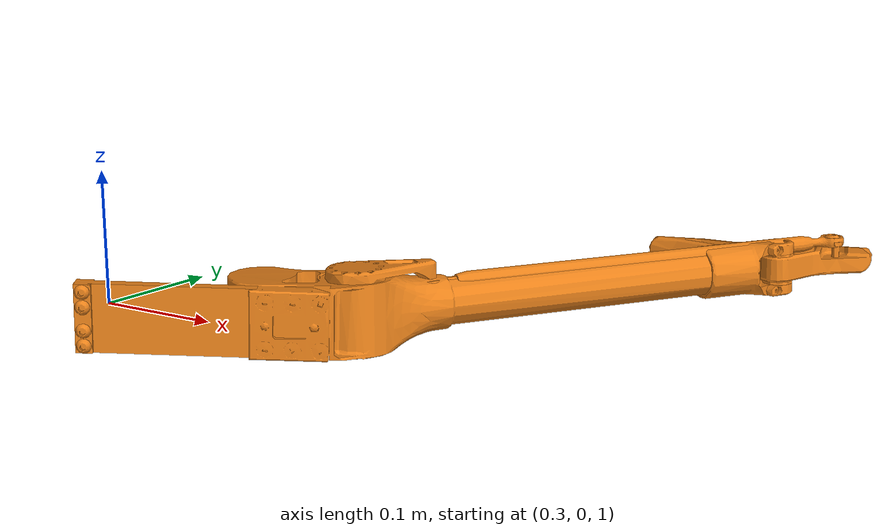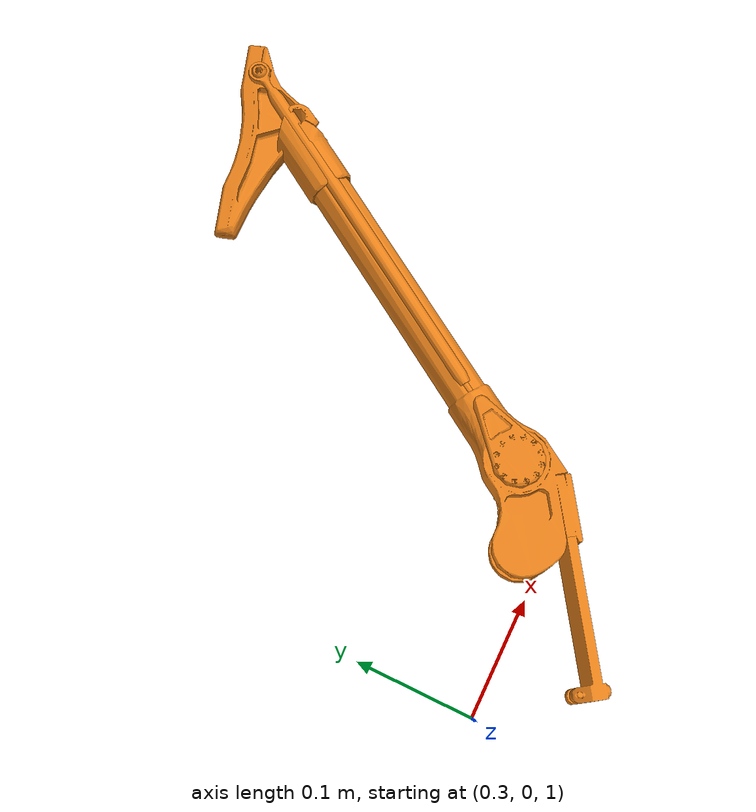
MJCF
<!-- Cassie simulation model developed by the Dynamic Robotics Laboratory -->
<mujoco model='cassie'>
  <compiler inertiafromgeom='auto' angle='degree' eulerseq='zyx' meshdir='cassie-stl-meshes'/>
  <size nuser_actuator='1' nuser_sensor='1' nuser_geom='1'/>
  <option timestep='0.0005' iterations='50' solver='PGS' gravity='0 0 -9.81'/>
  <!-- Timestep is set to 0.0005 because our controller runs at 2 kHz -->
  <!-- Larger values still have stable dynamics -->

  <visual>
    <quality shadowsize='4096'/>
    <map znear='0.05'/>
  </visual>

  <default>
    <joint limited='true'/>
    <motor ctrllimited='true'/>
    <geom contype='0' conaffinity='0' condim='1' solref='0.005 1'/>
    <equality solref='0.005 1'/>
    <default class='cassie'>
      <geom material='cassie'/>
    </default>
    <default class='collision'>
      <!-- User parameter for geoms is used to identify collision types -->
      <geom material='collision' contype='1' user='2'/>
      <default class='collision-left'>
        <geom contype='2' conaffinity='4'/>
      </default>
      <default class='collision-right'>
        <geom contype='4' conaffinity='2'/>
      </default>
    </default>
    <default class='obstacle'>
      <geom material='obstacle' condim='3' contype='8' conaffinity='15' user='1'/>
    </default>
  </default>

  <asset>
    <texture type='skybox' builtin='gradient' width='128' height='128' rgb1='0.4 0.6 0.8' rgb2='0 0 0'/>
    <texture name='plane' type='2d' builtin='checker' rgb1='0.2 0.2 0.2' rgb2='0.3 0.3 0.3' width='512' height='512'/>
    <material name='plane' reflectance='0.0' texture='plane' texrepeat='1 1' texuniform='true'/>
    <material name='cassie'    rgba='0.9 0.5 0.1 1'/>
    <material name='collision' rgba='0.1 0.5 0.9 0'/>
    <material name='obstacle'  rgba='0.2 0.6 0.2 1'/>
    <mesh name='cassie-pelvis' file='pelvis.stl'/>
    <mesh name='left-hip-roll'     file='hip-roll.stl'/>
    <mesh name='left-hip-yaw'      file='hip-yaw.stl'/>
    <mesh name='left-hip-pitch'    file='hip-pitch.stl'/>
    <mesh name='left-achilles-rod' file='achilles-rod.stl'/>
    <mesh name='left-knee'         file='knee.stl'/>
    <mesh name='left-knee-spring'  file='knee-spring.stl'/>
    <mesh name='left-shin'         file='shin.stl'/>
    <mesh name='left-tarsus'       file='tarsus.stl'/>
    <mesh name='left-heel-spring'  file='heel-spring.stl'/>
    <mesh name='left-foot-crank'   file='foot-crank.stl'/>
    <mesh name='left-plantar-rod'  file='plantar-rod.stl'/>
    <mesh name='left-foot'         file='foot.stl'/>
  </asset>

  <worldbody>
    <geom name='floor' pos='0 0 0' size='100 5 .125' type='plane' material='plane' condim='3' conaffinity='15'/>

    <light mode='trackcom' pos='0 0 5' dir='0 0 -1'/>
    <light directional='true' pos='0 0 3' dir='0 0 -1' diffuse='0.2 0.2 0.2' specular='0 0 0'/>

    <body name='cassie-pelvis' pos='0 0 1.01' childclass='cassie'>
     <body name='left-tarsus' pos='0.43476 0.02 0' xyaxes='0.52992 0.84805 0 -0.84805 0.52992 0'>
        <inertial pos='0.11046 -0.03058 -0.00131' mass='0.782' fullinertia='0.00039238 0.013595 0.013674 0.00023651 -4.987e-05 -4.82e-06'/>
        <joint name='left-tarsus' type='hinge' ref='58' range='50 170' damping='0.1'/>
        <geom type='mesh' mesh='left-tarsus'/>
        <geom type='capsule' size='0.04' fromto='-0.01269 -0.03059 0.00092 0.408 -0.04 0' class='collision-left'/>
        <body name='left-heel-spring' pos='-0.01269 -0.03059 0.00092' xyaxes='-0.91211 0.40829 0.036948 -0.40992 -0.90952 -0.068841'>
        <inertial pos='0.081 0.0022 0' mass='0.126' fullinertia='2.959e-05 0.00022231 0.0002007 7.15e-06 -6e-07 1e-07'/>
        <joint name='left-heel-spring' type='hinge' limited='false' stiffness='1250'/>
        <geom type='mesh' mesh='left-heel-spring'/>
        </body>
        <body name='left-foot-crank' pos='0.058 -0.034 0.02275'>
        <inertial pos='0.00493 2e-05 -0.00215' mass='0.1261' fullinertia='2.6941e-05 4.9621e-05 6.3362e-05 -2.1e-09 -3.9623e-06 -1.09e-08'/>
        <joint name='left-foot-crank' type='hinge' range='-140 -30' damping='1'/>
        <geom type='mesh' mesh='left-foot-crank'/>
        <body name='left-plantar-rod' pos='0.055 0 -0.00791'>
            <inertial pos='0.17792 0 0' mass='0.1186' fullinertia='2.779e-06 0.001774 0.001775 -2.34e-08 -8.1e-09 0'/>
            <joint name='left-plantar-rod' type='hinge' limited='false'/>
            <geom type='mesh' mesh='left-plantar-rod'/>
        </body>
        </body>
        <body name='left-foot' pos='0.408 -0.04 0'>
        <inertial pos='0.00474 0.02748 -0.00014' mass='0.1498' fullinertia='0.00017388 0.00016793 0.00033261 0.00011814 1.36e-06 -4e-07'/>
        <joint name='left-foot' type='hinge' range='-140 -30' damping='1' armature='0.01225'/>
        <geom type='mesh' mesh='left-foot'/>
        <geom type='capsule' size='0.02' fromto='-0.052821 0.092622 0 0.069746 -0.010224 0' class='collision-left'/>
        </body>
    </body>
    </body>

    <!-- Add any other moving bodies after the Cassie definition -->

  </worldbody>

  <equality>
    <connect body1='left-plantar-rod'  body2='left-foot' anchor='0.35012 0 0'/>
  </equality>

  <actuator>
    <!-- User parameter is the maximum no-load motor RPM -->
    <motor name='left-foot'      joint='left-foot'      gear='50' ctrllimited='true' ctrlrange='-0.9 0.9'   user='5500'/>
  </actuator>

  <sensor>
    <!-- User parameter is the number of absolute encoder bits -->
    <actuatorpos name='left-hip-roll-input'  actuator='left-hip-roll'  user='13'/>
    <actuatorpos name='left-hip-yaw-input'   actuator='left-hip-yaw'   user='13'/>
    <actuatorpos name='left-hip-pitch-input' actuator='left-hip-pitch' user='13'/>
    <actuatorpos name='left-knee-input'      actuator='left-knee'      user='13'/>
    <actuatorpos name='left-foot-input'      actuator='left-foot'      user='18'/>
    <jointpos    name='left-shin-output'     joint='left-shin'         user='18' noise='2e-4'/>
    <jointpos    name='left-tarsus-output'   joint='left-tarsus'       user='18' noise='2e-4'/>
    <jointpos    name='left-foot-output'     joint='left-foot'         user='13'/>
  </sensor>

</mujoco>
